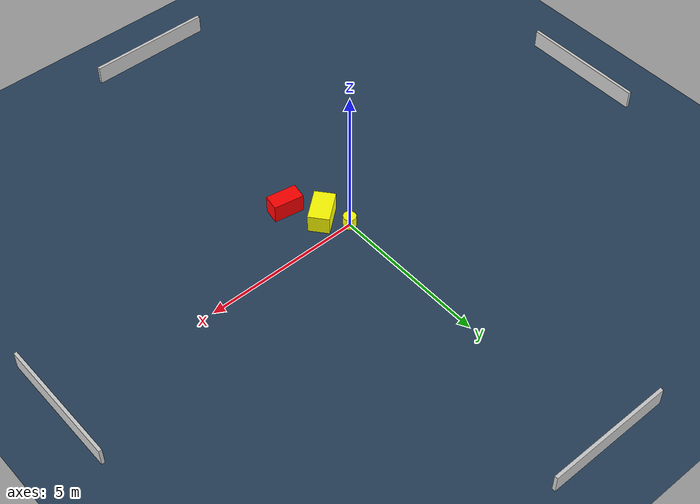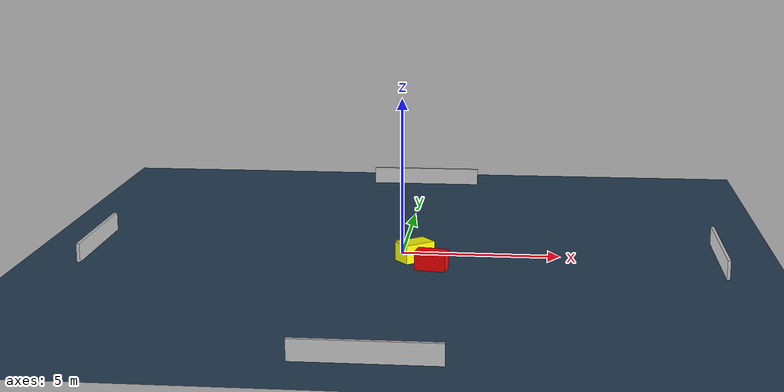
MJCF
<?xml version="1.0" ?>
<mujoco model="generated_environment">
  <option timestep="0.01" integrator="RK4" cone="elliptic"/>
  <default>
    <geom density="1"/>
  </default>
  <asset>
    <texture builtin="gradient" height="3072" name="skybox" rgb1="0.3 0.5 0.7" rgb2="0 0 0" type="skybox" width="512"/>
    <texture builtin="checker" height="300" name="groundplane" rgb1="0.2 0.3 0.4" rgb2="0.1 0.2 0.3" type="2d" width="300"/>
    <material name="groundplane" reflectance="0.2" texrepeat="5 5" texture="groundplane"/>
  </asset>
  <worldbody>
    <light dir="0 0 -1" directional="true" pos="0 0 1.5"/>
    <geom condim="3" friction="0.5 0.005 0.001" material="groundplane" name="floor" pos="0 0 0" size="0 0 0.05" type="plane"/>
    <body name="walls">
      <geom name="wall_1" condim="4" pos="-10.0 0.0 0.3" rgba="0.800000011920929 0.800000011920929 0.800000011920929 1.0" size="0.05 2.0 0.3" type="box"/>
      <geom name="wall_2" condim="4" pos="10.0 0.0 0.3" rgba="0.800000011920929 0.800000011920929 0.800000011920929 1.0" size="0.05 2.0 0.3" type="box"/>
      <geom name="wall_3" condim="4" pos="0.0 -10.0 0.3" rgba="0.800000011920929 0.800000011920929 0.800000011920929 1.0" size="2.0 0.05 0.3" type="box"/>
      <geom name="wall_4" condim="4" pos="0.0 10.0 0.3" rgba="0.800000011920929 0.800000011920929 0.800000011920929 1.0" size="2.0 0.05 0.3" type="box"/>
    </body>
    <body name="robot">
      <joint name="joint_x" type="slide" pos="0 0 0" axis="1 0 0"/>
      <joint name="joint_y" type="slide" pos="0 0 0" axis="0 1 0"/>
      <geom name="robot" type="cylinder" pos="0.0 0.0 0.2" size="0.2 0.2 0.0" mass="5.0" friction="1.0 0.005 0.0001" condim="4" rgba="1.0 1.0 0.0 1.0"/>
    </body>
    <body name="obstacle_1_movable">
      <geom name="obstacle_1_movable" condim="4" pos="0.4564657601639908 -0.7142651141703028 0.3" euler="0 0 38.91058316359828" friction="0.0 0.005 0.001" rgba="1.0 1.0 0.0 1.0" size="0.526970691388523 0.3292201470662358 0.3" type="box" mass="0.1"/>
      <joint type="free"/>
    </body>
    <body name="obstacle_2_static">
      <geom name="obstacle_2_static" condim="4" pos="1.049761466234479 -1.691895482134613 0.3" euler="0 0 350.1778080337477" friction="0.0 0.005 0.001" rgba="1.0 0.0 0.0 1.0" size="0.4790932998155015 0.25663484160177463 0.3" type="box"/>
    </body>
  </worldbody>
  <actuator>
    <motor name="actuator_x" joint="joint_x" gear="1" ctrlrange="-1 1"/>
    <motor name="actuator_y" joint="joint_y" gear="1" ctrlrange="-1 1"/>
  </actuator>
</mujoco>
